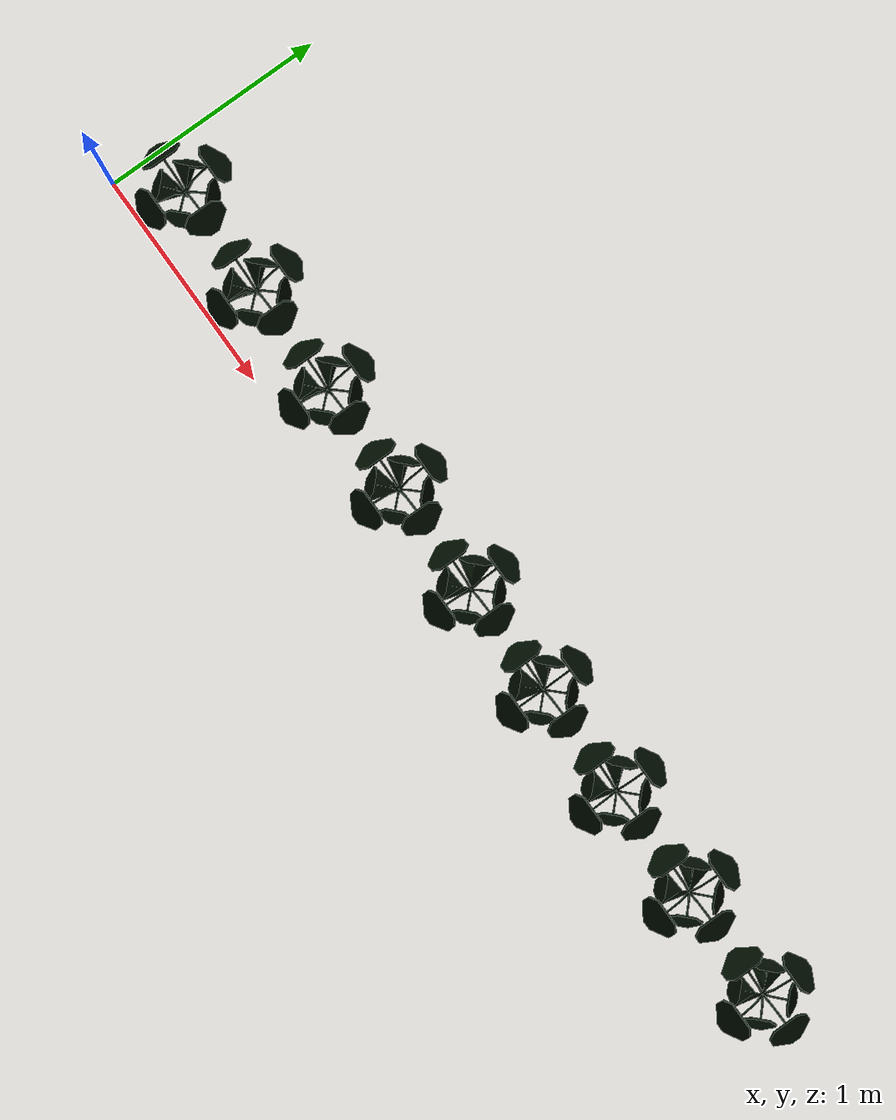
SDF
<?xml version="1.0" ?>
<sdf version="1.5">

<model name="plant9">
<static>1</static>
<pose>0.0 0.0 0.0 1.5707 0.0 1.5707</pose>

  <link name="link">

    <visual name="visual">
      <geometry>
        <mesh>
          <uri>model://plant9/plant9.stl</uri>
        </mesh>
      </geometry>
      <material>
        <lighting>1</lighting>
        <shader type='vertex'>
          <normal_map>__default__</normal_map>
        </shader>
        <ambient>0.0 0.5 0.0 1</ambient>
        <diffuse>0.0 0.05 0.0 1</diffuse>
        <specular>0.0 0.01 0.0 1</specular>
        <emissive>0 0 0 1</emissive>
      </material>
      <cast_shadows>0</cast_shadows>
    </visual>

  </link>
</model>
</sdf>
